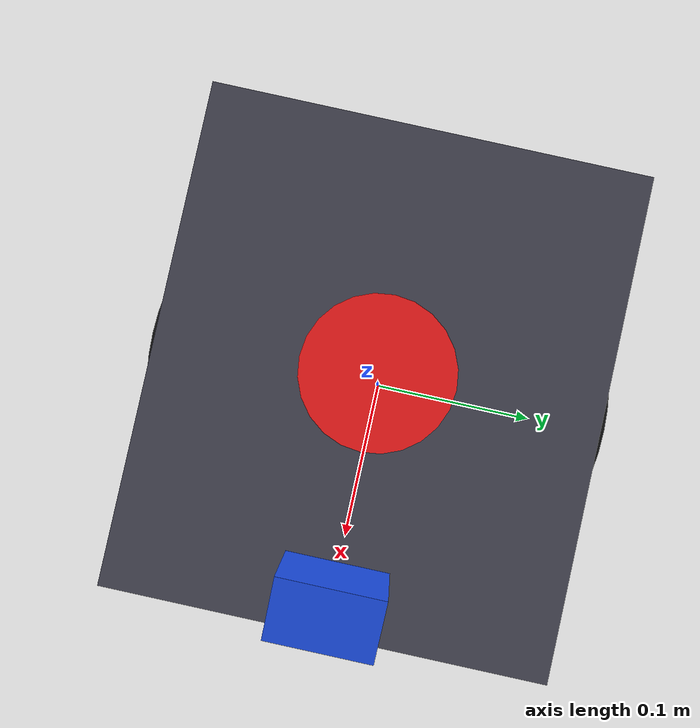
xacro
<?xml version="1.0"?>
<robot xmlns:xacro="http://www.ros.org/wiki/xacro" name="artpark_bot">

  <!-- ================= CONSTANTS ================= -->
  <xacro:property name="base_len"   value="0.25"/>
  <xacro:property name="base_wid"   value="0.22"/>
  <xacro:property name="base_hei"   value="0.08"/>
  <xacro:property name="base_mass"  value="3.0"/>

  <xacro:property name="wheel_rad"  value="0.045"/>
  <xacro:property name="wheel_wid"  value="0.025"/>
  <xacro:property name="wheel_mass" value="0.2"/>
  <xacro:property name="wheel_sep"  value="0.22"/>

  <xacro:property name="caster_rad" value="0.02"/>

  <xacro:property name="cam_tilt_deg" value="10"/>
  <xacro:property name="cam_tilt" value="${cam_tilt_deg * 3.14159265 / 180.0}"/>

  <!-- ================= MATERIALS ================= -->
  <material name="body_grey"><color rgba="0.25 0.25 0.3 1"/></material>
  <material name="wheel_black"><color rgba="0.05 0.05 0.05 1"/></material>
  <material name="cam_blue"><color rgba="0.1 0.3 0.9 1"/></material>
  <material name="lidar_red"><color rgba="0.9 0.1 0.1 1"/></material>

  <!-- ================= MACROS ================= -->
  <xacro:macro name="inertial_box" params="mass x y z">
    <inertial>
      <mass value="${mass}"/>
      <inertia ixx="${mass/12*(y*y+z*z)}" ixy="0" ixz="0"
               iyy="${mass/12*(x*x+z*z)}" iyz="0"
               izz="${mass/12*(x*x+y*y)}"/>
    </inertial>
  </xacro:macro>

  <xacro:macro name="inertial_cyl" params="mass r h">
    <inertial>
      <mass value="${mass}"/>
      <inertia ixx="${mass/12*(3*r*r+h*h)}" ixy="0" ixz="0"
               iyy="${mass/12*(3*r*r+h*h)}" iyz="0"
               izz="${mass/2*r*r}"/>
    </inertial>
  </xacro:macro>

  <xacro:macro name="inertial_sph" params="mass r">
    <inertial>
      <mass value="${mass}"/>
      <inertia ixx="${2*mass*r*r/5}" ixy="0" ixz="0"
               iyy="${2*mass*r*r/5}" iyz="0"
               izz="${2*mass*r*r/5}"/>
    </inertial>
  </xacro:macro>

  <!-- ================= CHASSIS ================= -->
  <!-- base_footprint is the root frame. Some spawn tools require an
       inertial on the root link; give it a tiny non-zero one. -->
  <link name="base_footprint">
    <inertial>
      <mass value="0.001"/>
      <inertia ixx="1e-6" ixy="0" ixz="0" iyy="1e-6" iyz="0" izz="1e-6"/>
    </inertial>
  </link>

  <link name="base_link">
    <xacro:inertial_box mass="${base_mass}" x="${base_len}" y="${base_wid}" z="${base_hei}"/>
    <visual>
      <geometry><box size="${base_len} ${base_wid} ${base_hei}"/></geometry>
      <material name="body_grey"/>
    </visual>
    <collision>
      <geometry><box size="${base_len} ${base_wid} ${base_hei}"/></geometry>
    </collision>
  </link>

  <joint name="base_footprint_to_base" type="fixed">
    <parent link="base_footprint"/>
    <child  link="base_link"/>
    <origin xyz="0 0 ${wheel_rad + base_hei/2}" rpy="0 0 0"/>
  </joint>

  <!-- ================= WHEELS ================= -->
  <xacro:macro name="wheel" params="side y_sign">
    <link name="wheel_${side}">
      <xacro:inertial_cyl mass="${wheel_mass}" r="${wheel_rad}" h="${wheel_wid}"/>
      <visual>
        <origin xyz="0 0 0" rpy="1.5707963 0 0"/>
        <geometry><cylinder radius="${wheel_rad}" length="${wheel_wid}"/></geometry>
        <material name="wheel_black"/>
      </visual>
      <collision>
        <origin xyz="0 0 0" rpy="1.5707963 0 0"/>
        <geometry><cylinder radius="${wheel_rad}" length="${wheel_wid}"/></geometry>
      </collision>
    </link>
    <joint name="wheel_${side}_joint" type="continuous">
      <parent link="base_link"/>
      <child  link="wheel_${side}"/>
      <origin xyz="0 ${y_sign*wheel_sep/2} ${-base_hei/2}" rpy="0 0 0"/>
      <axis xyz="0 1 0"/>
    </joint>
  </xacro:macro>
  <xacro:wheel side="left"  y_sign=" 1"/>
  <xacro:wheel side="right" y_sign="-1"/>

  <!-- ================= CASTER ================= -->
  <link name="caster">
    <xacro:inertial_sph mass="0.05" r="${caster_rad}"/>
    <visual>
      <geometry><sphere radius="${caster_rad}"/></geometry>
      <material name="wheel_black"/>
    </visual>
    <collision>
      <geometry><sphere radius="${caster_rad}"/></geometry>
    </collision>
  </link>
  <joint name="caster_joint" type="fixed">
    <parent link="base_link"/>
    <child  link="caster"/>
    <origin xyz="${-base_len/2 + caster_rad} 0 ${-base_hei/2 - (wheel_rad - caster_rad)}" rpy="0 0 0"/>
  </joint>

  <!-- ================= FRONT RGB CAMERA (tilted 10° down) ================= -->
  <link name="front_cam">
    <xacro:inertial_box mass="0.05" x="0.03" y="0.05" z="0.03"/>
    <visual>
      <geometry><box size="0.03 0.05 0.03"/></geometry>
      <material name="cam_blue"/>
    </visual>
    <collision>
      <geometry><box size="0.03 0.05 0.03"/></geometry>
    </collision>
  </link>
  <joint name="front_cam_joint" type="fixed">
    <parent link="base_link"/>
    <child  link="front_cam"/>
    <origin xyz="${base_len/2 - 0.02} 0 ${base_hei/2 + 0.02}" rpy="0 ${cam_tilt} 0"/>
  </joint>

  <!-- ================= DOWN-FACING FLOOR CAMERA ================= -->
  <link name="floor_cam">
    <xacro:inertial_box mass="0.03" x="0.02" y="0.04" z="0.02"/>
    <!-- No visual/collision — camera must not see its own geometry.
         Sensor pose is derived from floor_cam_joint by sdformat. -->
  </link>
  <joint name="floor_cam_joint" type="fixed">
    <parent link="base_link"/>
    <child  link="floor_cam"/>
    <!-- 75° down from horizontal; mounted above chassis front.
         89°/90° causes blank render on Mesa llvmpipe — 75° is the safe max. -->
    <origin xyz="${base_len/2 - 0.02} 0 ${base_hei/2 + 0.04}" rpy="0 1.3090 0"/>
  </joint>
  <!-- Prevent sdformat from lumping floor_cam into the canonical link.
       Keeps the sensor on its own scene node so ogre2 renders correctly. -->
  <gazebo reference="floor_cam_joint">
    <preserveFixedJoint>true</preserveFixedJoint>
  </gazebo>

  <!-- ================= 2D LiDAR ================= -->
  <link name="lidar_link">
    <xacro:inertial_cyl mass="0.1" r="0.03" h="0.04"/>
    <visual>
      <geometry><cylinder radius="0.03" length="0.04"/></geometry>
      <material name="lidar_red"/>
    </visual>
    <collision>
      <geometry><cylinder radius="0.03" length="0.04"/></geometry>
    </collision>
  </link>
  <joint name="lidar_joint" type="fixed">
    <parent link="base_link"/>
    <child  link="lidar_link"/>
    <!-- Raised to 0.06m above chassis top to clear the front_cam visual box
         and avoid self-collision returns in the LaserScan. -->
    <origin xyz="0 0 ${base_hei/2 + 0.06}" rpy="0 0 0"/>
  </joint>

  <!-- ================= IMU ================= -->
  <link name="imu_link">
    <inertial><mass value="0.01"/><inertia ixx="1e-6" ixy="0" ixz="0" iyy="1e-6" iyz="0" izz="1e-6"/></inertial>
  </link>
  <joint name="imu_joint" type="fixed">
    <parent link="base_link"/>
    <child  link="imu_link"/>
    <origin xyz="0 0 0" rpy="0 0 0"/>
  </joint>

  <!-- ================= GAZEBO / IGNITION TAGS ================= -->
  <gazebo reference="base_link">
    <visual>
      <material>
        <ambient>1.0 0.1 0.1 1.0</ambient>
        <diffuse>1.0 0.1 0.1 1.0</diffuse>
        <specular>0.2 0.2 0.2 1.0</specular>
      </material>
    </visual>
  </gazebo>
  <gazebo reference="wheel_left">
    <mu1>1.0</mu1><mu2>1.0</mu2>
    <visual><material>
      <ambient>0.05 0.05 0.05 1.0</ambient>
      <diffuse>0.05 0.05 0.05 1.0</diffuse>
    </material></visual>
  </gazebo>
  <gazebo reference="wheel_right">
    <mu1>1.0</mu1><mu2>1.0</mu2>
    <visual><material>
      <ambient>0.05 0.05 0.05 1.0</ambient>
      <diffuse>0.05 0.05 0.05 1.0</diffuse>
    </material></visual>
  </gazebo>
  <gazebo reference="caster">
    <mu1>0.0</mu1><mu2>0.0</mu2>
  </gazebo>
  <gazebo reference="front_cam">
    <visual><material>
      <ambient>0.1 0.3 0.9 1.0</ambient>
      <diffuse>0.1 0.3 0.9 1.0</diffuse>
    </material></visual>
  </gazebo>
  <!-- floor_cam: no Gazebo visual override — link has no visual geometry -->
  <gazebo reference="lidar_link">
    <visual><material>
      <ambient>1.0 0.8 0.0 1.0</ambient>
      <diffuse>1.0 0.8 0.0 1.0</diffuse>
    </material></visual>
  </gazebo>

  <!-- Differential drive plugin.
       Topic names are absolute (leading slash) so they don't get namespaced
       under /model/artpark_bot/ — the bridge talks to /cmd_vel + /odom. -->
  <gazebo>
    <plugin filename="gz-sim-diff-drive-system"
            name="gz::sim::systems::DiffDrive">
      <left_joint>wheel_left_joint</left_joint>
      <right_joint>wheel_right_joint</right_joint>
      <wheel_separation>${wheel_sep}</wheel_separation>
      <wheel_radius>${wheel_rad}</wheel_radius>
      <topic>/cmd_vel</topic>
      <odom_topic>/odom</odom_topic>
      <frame_id>odom</frame_id>
      <child_frame_id>base_footprint</child_frame_id>
      <odom_publish_frequency>50</odom_publish_frequency>
      <tf_topic>/tf</tf_topic>
    </plugin>
    <plugin filename="gz-sim-joint-state-publisher-system"
            name="gz::sim::systems::JointStatePublisher">
      <topic>/joint_states</topic>
    </plugin>
  </gazebo>

  <!-- Front RGB camera -->
  <gazebo reference="front_cam">
    <sensor name="front_cam" type="camera">
      <update_rate>30</update_rate>
      <topic>/front_cam/image_raw</topic>
      <camera>
        <horizontal_fov>1.5184</horizontal_fov>
        <image><width>640</width><height>480</height><format>R8G8B8</format></image>
        <clip><near>0.05</near><far>10.0</far></clip>
      </camera>
      <always_on>true</always_on>
      <visualize>false</visualize>
    </sensor>
  </gazebo>

  <gazebo reference="floor_cam">
    <sensor name="floor_cam" type="camera">
      <update_rate>15</update_rate>
      <topic>/floor_cam/image_raw</topic>
      <camera>
        <horizontal_fov>1.047</horizontal_fov>
        <image><width>320</width><height>240</height><format>R8G8B8</format></image>
        <clip><near>0.01</near><far>0.5</far></clip>
      </camera>
      <always_on>true</always_on>
      <visualize>false</visualize>
    </sensor>
  </gazebo>

  <!-- LiDAR: gpu_lidar required by Gazebo Harmonic (cpu lidar unsupported).
       Works headless via headless_rendering flag plus Mesa llvmpipe. -->
  <gazebo reference="lidar_link">
    <sensor name="lidar" type="gpu_lidar">
      <update_rate>15</update_rate>
      <topic>/scan</topic>
      <lidar>
        <scan>
          <horizontal>
            <samples>360</samples>
            <resolution>1</resolution>
            <min_angle>-3.14159</min_angle>
            <max_angle> 3.14159</max_angle>
          </horizontal>
        </scan>
        <range><min>0.15</min><max>6.0</max><resolution>0.01</resolution></range>
      </lidar>
      <always_on>true</always_on>
      <visualize>true</visualize>
    </sensor>
  </gazebo>

  <!-- IMU -->
  <gazebo reference="imu_link">
    <sensor name="imu" type="imu">
      <update_rate>100</update_rate>
      <topic>/imu</topic>
      <always_on>true</always_on>
      <imu>
        <angular_velocity>
          <x><noise type="gaussian"><mean>0</mean><stddev>0.005</stddev></noise></x>
          <y><noise type="gaussian"><mean>0</mean><stddev>0.005</stddev></noise></y>
          <z><noise type="gaussian"><mean>0</mean><stddev>0.005</stddev></noise></z>
        </angular_velocity>
        <linear_acceleration>
          <x><noise type="gaussian"><mean>0</mean><stddev>0.02</stddev></noise></x>
          <y><noise type="gaussian"><mean>0</mean><stddev>0.02</stddev></noise></y>
          <z><noise type="gaussian"><mean>0</mean><stddev>0.02</stddev></noise></z>
        </linear_acceleration>
      </imu>
    </sensor>
  </gazebo>

</robot>
